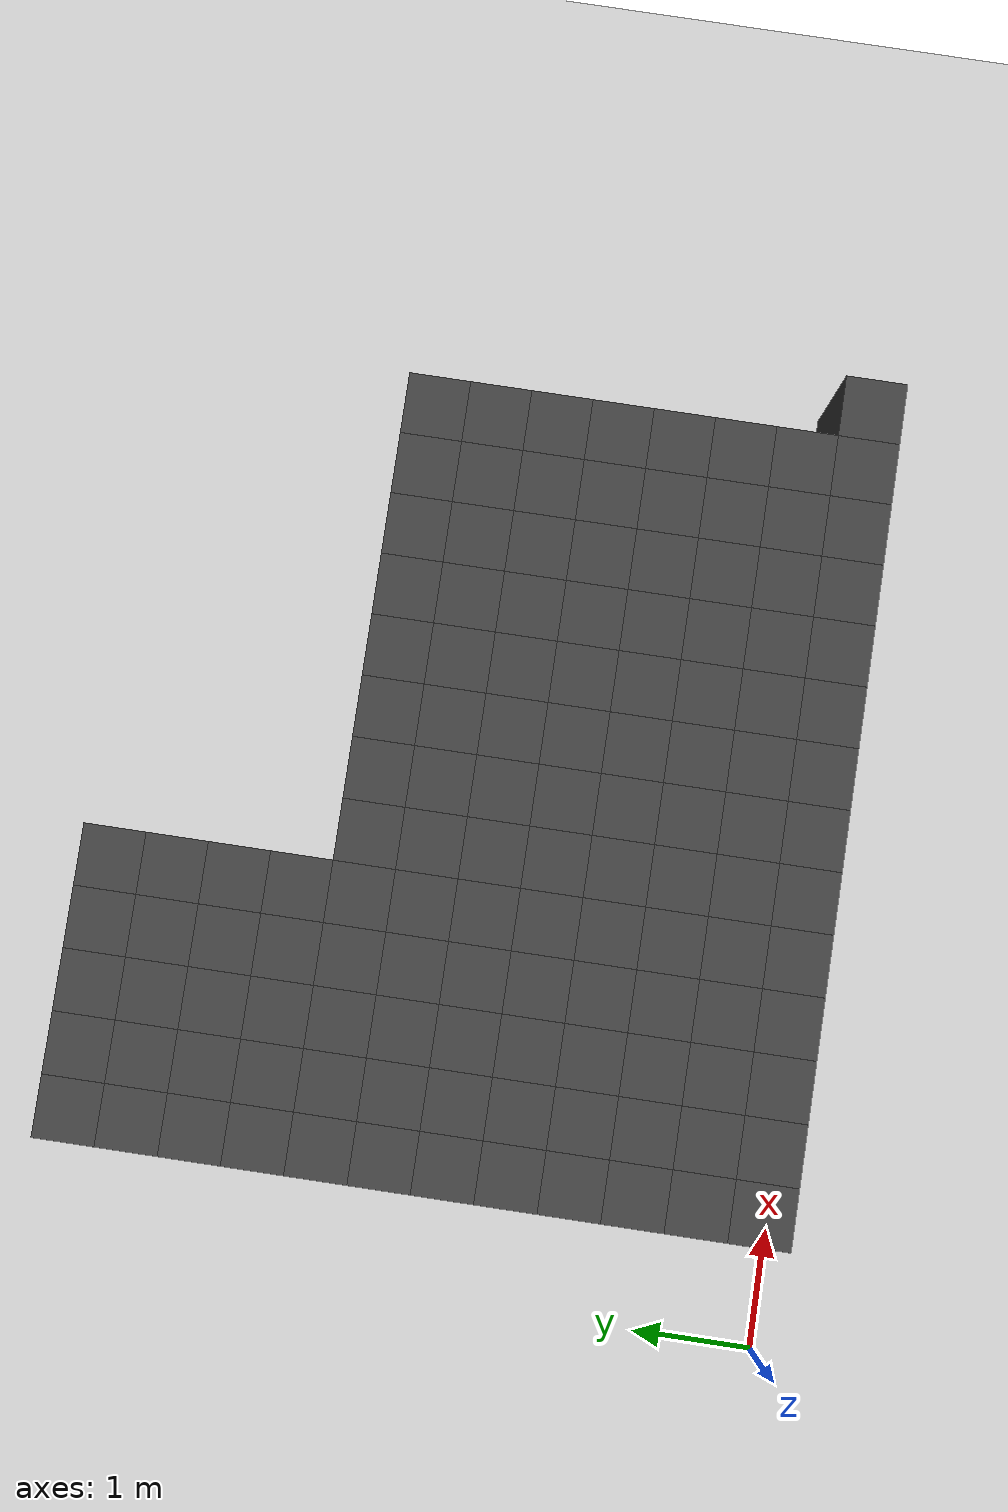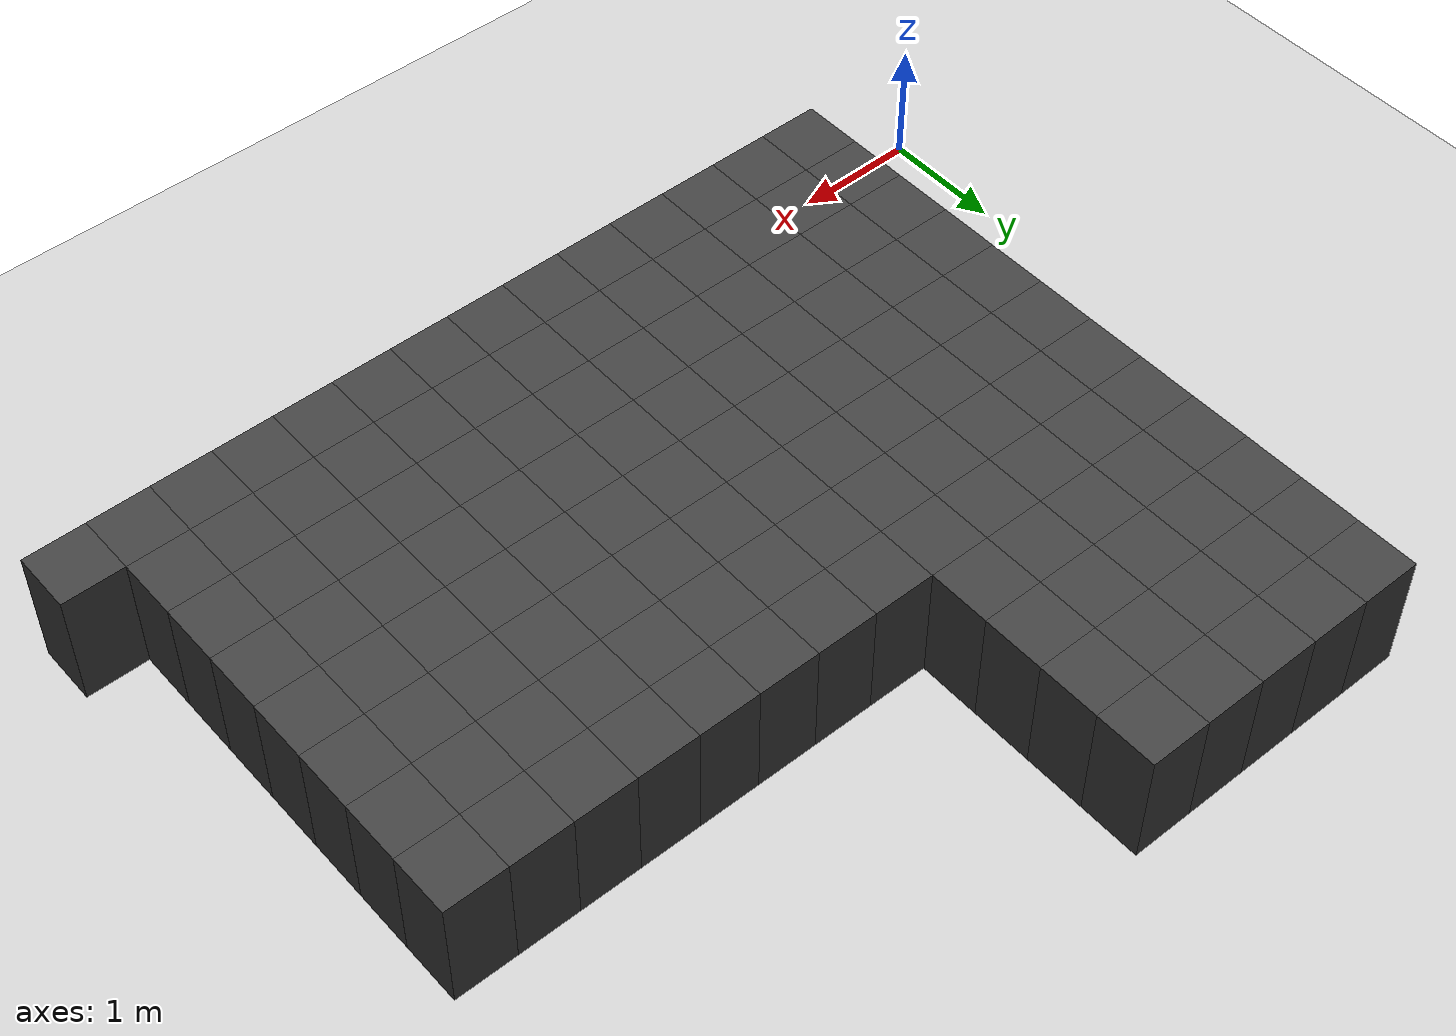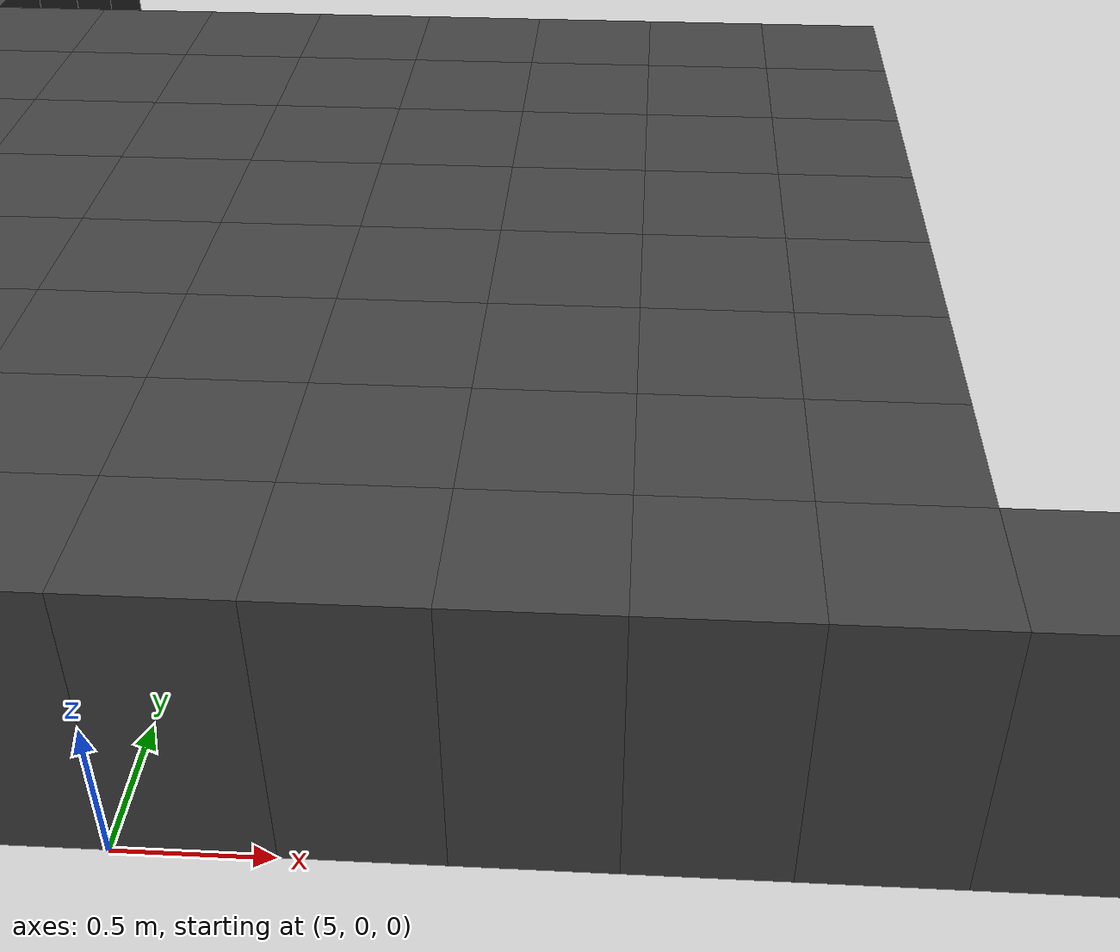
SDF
<sdf version="1.7">
 <world name="map_14668">
  <model name="ground_plane">
   <static>true</static>
   <link name="link">
    <collision name="collision">
     <geometry><plane><normal>0 0 1</normal><size>200 200</size></plane></geometry>
    </collision>
    <visual name="visual">
     <geometry><plane><normal>0 0 1</normal><size>200 200</size></plane></geometry>
     <material><ambient>0.8 0.8 0.8 1</ambient><diffuse>0.8 0.8 0.8 1</diffuse></material>
    </visual>
   </link>
  </model>
  <model name="maze_environment">
   <static>true</static>
   <link name="wall_489">
    <pose>1.250 5.750 0.500 0 0 0</pose>
    <collision name="col"><geometry><box><size>0.5 0.5 1.0</size></box></geometry></collision>
    <visual name="vis">
     <geometry><box><size>0.5 0.5 1.0</size></box></geometry>
     <material><ambient>0.15 0.15 0.15 1</ambient><diffuse>0.25 0.25 0.25 1</diffuse></material>
    </visual>
   </link>
   <link name="wall_490">
    <pose>1.750 5.750 0.500 0 0 0</pose>
    <collision name="col"><geometry><box><size>0.5 0.5 1.0</size></box></geometry></collision>
    <visual name="vis">
     <geometry><box><size>0.5 0.5 1.0</size></box></geometry>
     <material><ambient>0.15 0.15 0.15 1</ambient><diffuse>0.25 0.25 0.25 1</diffuse></material>
    </visual>
   </link>
   <link name="wall_491">
    <pose>2.250 5.750 0.500 0 0 0</pose>
    <collision name="col"><geometry><box><size>0.5 0.5 1.0</size></box></geometry></collision>
    <visual name="vis">
     <geometry><box><size>0.5 0.5 1.0</size></box></geometry>
     <material><ambient>0.15 0.15 0.15 1</ambient><diffuse>0.25 0.25 0.25 1</diffuse></material>
    </visual>
   </link>
   <link name="wall_492">
    <pose>2.750 5.750 0.500 0 0 0</pose>
    <collision name="col"><geometry><box><size>0.5 0.5 1.0</size></box></geometry></collision>
    <visual name="vis">
     <geometry><box><size>0.5 0.5 1.0</size></box></geometry>
     <material><ambient>0.15 0.15 0.15 1</ambient><diffuse>0.25 0.25 0.25 1</diffuse></material>
    </visual>
   </link>
   <link name="wall_493">
    <pose>3.250 5.750 0.500 0 0 0</pose>
    <collision name="col"><geometry><box><size>0.5 0.5 1.0</size></box></geometry></collision>
    <visual name="vis">
     <geometry><box><size>0.5 0.5 1.0</size></box></geometry>
     <material><ambient>0.15 0.15 0.15 1</ambient><diffuse>0.25 0.25 0.25 1</diffuse></material>
    </visual>
   </link>
   <link name="wall_519">
    <pose>1.250 5.250 0.500 0 0 0</pose>
    <collision name="col"><geometry><box><size>0.5 0.5 1.0</size></box></geometry></collision>
    <visual name="vis">
     <geometry><box><size>0.5 0.5 1.0</size></box></geometry>
     <material><ambient>0.15 0.15 0.15 1</ambient><diffuse>0.25 0.25 0.25 1</diffuse></material>
    </visual>
   </link>
   <link name="wall_520">
    <pose>1.750 5.250 0.500 0 0 0</pose>
    <collision name="col"><geometry><box><size>0.5 0.5 1.0</size></box></geometry></collision>
    <visual name="vis">
     <geometry><box><size>0.5 0.5 1.0</size></box></geometry>
     <material><ambient>0.15 0.15 0.15 1</ambient><diffuse>0.25 0.25 0.25 1</diffuse></material>
    </visual>
   </link>
   <link name="wall_521">
    <pose>2.250 5.250 0.500 0 0 0</pose>
    <collision name="col"><geometry><box><size>0.5 0.5 1.0</size></box></geometry></collision>
    <visual name="vis">
     <geometry><box><size>0.5 0.5 1.0</size></box></geometry>
     <material><ambient>0.15 0.15 0.15 1</ambient><diffuse>0.25 0.25 0.25 1</diffuse></material>
    </visual>
   </link>
   <link name="wall_522">
    <pose>2.750 5.250 0.500 0 0 0</pose>
    <collision name="col"><geometry><box><size>0.5 0.5 1.0</size></box></geometry></collision>
    <visual name="vis">
     <geometry><box><size>0.5 0.5 1.0</size></box></geometry>
     <material><ambient>0.15 0.15 0.15 1</ambient><diffuse>0.25 0.25 0.25 1</diffuse></material>
    </visual>
   </link>
   <link name="wall_523">
    <pose>3.250 5.250 0.500 0 0 0</pose>
    <collision name="col"><geometry><box><size>0.5 0.5 1.0</size></box></geometry></collision>
    <visual name="vis">
     <geometry><box><size>0.5 0.5 1.0</size></box></geometry>
     <material><ambient>0.15 0.15 0.15 1</ambient><diffuse>0.25 0.25 0.25 1</diffuse></material>
    </visual>
   </link>
   <link name="wall_555">
    <pose>1.250 4.750 0.500 0 0 0</pose>
    <collision name="col"><geometry><box><size>0.5 0.5 1.0</size></box></geometry></collision>
    <visual name="vis">
     <geometry><box><size>0.5 0.5 1.0</size></box></geometry>
     <material><ambient>0.15 0.15 0.15 1</ambient><diffuse>0.25 0.25 0.25 1</diffuse></material>
    </visual>
   </link>
   <link name="wall_556">
    <pose>1.750 4.750 0.500 0 0 0</pose>
    <collision name="col"><geometry><box><size>0.5 0.5 1.0</size></box></geometry></collision>
    <visual name="vis">
     <geometry><box><size>0.5 0.5 1.0</size></box></geometry>
     <material><ambient>0.15 0.15 0.15 1</ambient><diffuse>0.25 0.25 0.25 1</diffuse></material>
    </visual>
   </link>
   <link name="wall_557">
    <pose>2.250 4.750 0.500 0 0 0</pose>
    <collision name="col"><geometry><box><size>0.5 0.5 1.0</size></box></geometry></collision>
    <visual name="vis">
     <geometry><box><size>0.5 0.5 1.0</size></box></geometry>
     <material><ambient>0.15 0.15 0.15 1</ambient><diffuse>0.25 0.25 0.25 1</diffuse></material>
    </visual>
   </link>
   <link name="wall_558">
    <pose>2.750 4.750 0.500 0 0 0</pose>
    <collision name="col"><geometry><box><size>0.5 0.5 1.0</size></box></geometry></collision>
    <visual name="vis">
     <geometry><box><size>0.5 0.5 1.0</size></box></geometry>
     <material><ambient>0.15 0.15 0.15 1</ambient><diffuse>0.25 0.25 0.25 1</diffuse></material>
    </visual>
   </link>
   <link name="wall_559">
    <pose>3.250 4.750 0.500 0 0 0</pose>
    <collision name="col"><geometry><box><size>0.5 0.5 1.0</size></box></geometry></collision>
    <visual name="vis">
     <geometry><box><size>0.5 0.5 1.0</size></box></geometry>
     <material><ambient>0.15 0.15 0.15 1</ambient><diffuse>0.25 0.25 0.25 1</diffuse></material>
    </visual>
   </link>
   <link name="wall_589">
    <pose>1.250 4.250 0.500 0 0 0</pose>
    <collision name="col"><geometry><box><size>0.5 0.5 1.0</size></box></geometry></collision>
    <visual name="vis">
     <geometry><box><size>0.5 0.5 1.0</size></box></geometry>
     <material><ambient>0.15 0.15 0.15 1</ambient><diffuse>0.25 0.25 0.25 1</diffuse></material>
    </visual>
   </link>
   <link name="wall_590">
    <pose>1.750 4.250 0.500 0 0 0</pose>
    <collision name="col"><geometry><box><size>0.5 0.5 1.0</size></box></geometry></collision>
    <visual name="vis">
     <geometry><box><size>0.5 0.5 1.0</size></box></geometry>
     <material><ambient>0.15 0.15 0.15 1</ambient><diffuse>0.25 0.25 0.25 1</diffuse></material>
    </visual>
   </link>
   <link name="wall_591">
    <pose>2.250 4.250 0.500 0 0 0</pose>
    <collision name="col"><geometry><box><size>0.5 0.5 1.0</size></box></geometry></collision>
    <visual name="vis">
     <geometry><box><size>0.5 0.5 1.0</size></box></geometry>
     <material><ambient>0.15 0.15 0.15 1</ambient><diffuse>0.25 0.25 0.25 1</diffuse></material>
    </visual>
   </link>
   <link name="wall_592">
    <pose>2.750 4.250 0.500 0 0 0</pose>
    <collision name="col"><geometry><box><size>0.5 0.5 1.0</size></box></geometry></collision>
    <visual name="vis">
     <geometry><box><size>0.5 0.5 1.0</size></box></geometry>
     <material><ambient>0.15 0.15 0.15 1</ambient><diffuse>0.25 0.25 0.25 1</diffuse></material>
    </visual>
   </link>
   <link name="wall_593">
    <pose>3.250 4.250 0.500 0 0 0</pose>
    <collision name="col"><geometry><box><size>0.5 0.5 1.0</size></box></geometry></collision>
    <visual name="vis">
     <geometry><box><size>0.5 0.5 1.0</size></box></geometry>
     <material><ambient>0.15 0.15 0.15 1</ambient><diffuse>0.25 0.25 0.25 1</diffuse></material>
    </visual>
   </link>
   <link name="wall_623">
    <pose>1.250 3.750 0.500 0 0 0</pose>
    <collision name="col"><geometry><box><size>0.5 0.5 1.0</size></box></geometry></collision>
    <visual name="vis">
     <geometry><box><size>0.5 0.5 1.0</size></box></geometry>
     <material><ambient>0.15 0.15 0.15 1</ambient><diffuse>0.25 0.25 0.25 1</diffuse></material>
    </visual>
   </link>
   <link name="wall_624">
    <pose>1.750 3.750 0.500 0 0 0</pose>
    <collision name="col"><geometry><box><size>0.5 0.5 1.0</size></box></geometry></collision>
    <visual name="vis">
     <geometry><box><size>0.5 0.5 1.0</size></box></geometry>
     <material><ambient>0.15 0.15 0.15 1</ambient><diffuse>0.25 0.25 0.25 1</diffuse></material>
    </visual>
   </link>
   <link name="wall_625">
    <pose>2.250 3.750 0.500 0 0 0</pose>
    <collision name="col"><geometry><box><size>0.5 0.5 1.0</size></box></geometry></collision>
    <visual name="vis">
     <geometry><box><size>0.5 0.5 1.0</size></box></geometry>
     <material><ambient>0.15 0.15 0.15 1</ambient><diffuse>0.25 0.25 0.25 1</diffuse></material>
    </visual>
   </link>
   <link name="wall_626">
    <pose>2.750 3.750 0.500 0 0 0</pose>
    <collision name="col"><geometry><box><size>0.5 0.5 1.0</size></box></geometry></collision>
    <visual name="vis">
     <geometry><box><size>0.5 0.5 1.0</size></box></geometry>
     <material><ambient>0.15 0.15 0.15 1</ambient><diffuse>0.25 0.25 0.25 1</diffuse></material>
    </visual>
   </link>
   <link name="wall_627">
    <pose>3.250 3.750 0.500 0 0 0</pose>
    <collision name="col"><geometry><box><size>0.5 0.5 1.0</size></box></geometry></collision>
    <visual name="vis">
     <geometry><box><size>0.5 0.5 1.0</size></box></geometry>
     <material><ambient>0.15 0.15 0.15 1</ambient><diffuse>0.25 0.25 0.25 1</diffuse></material>
    </visual>
   </link>
   <link name="wall_628">
    <pose>3.750 3.750 0.500 0 0 0</pose>
    <collision name="col"><geometry><box><size>0.5 0.5 1.0</size></box></geometry></collision>
    <visual name="vis">
     <geometry><box><size>0.5 0.5 1.0</size></box></geometry>
     <material><ambient>0.15 0.15 0.15 1</ambient><diffuse>0.25 0.25 0.25 1</diffuse></material>
    </visual>
   </link>
   <link name="wall_629">
    <pose>4.250 3.750 0.500 0 0 0</pose>
    <collision name="col"><geometry><box><size>0.5 0.5 1.0</size></box></geometry></collision>
    <visual name="vis">
     <geometry><box><size>0.5 0.5 1.0</size></box></geometry>
     <material><ambient>0.15 0.15 0.15 1</ambient><diffuse>0.25 0.25 0.25 1</diffuse></material>
    </visual>
   </link>
   <link name="wall_630">
    <pose>4.750 3.750 0.500 0 0 0</pose>
    <collision name="col"><geometry><box><size>0.5 0.5 1.0</size></box></geometry></collision>
    <visual name="vis">
     <geometry><box><size>0.5 0.5 1.0</size></box></geometry>
     <material><ambient>0.15 0.15 0.15 1</ambient><diffuse>0.25 0.25 0.25 1</diffuse></material>
    </visual>
   </link>
   <link name="wall_631">
    <pose>5.250 3.750 0.500 0 0 0</pose>
    <collision name="col"><geometry><box><size>0.5 0.5 1.0</size></box></geometry></collision>
    <visual name="vis">
     <geometry><box><size>0.5 0.5 1.0</size></box></geometry>
     <material><ambient>0.15 0.15 0.15 1</ambient><diffuse>0.25 0.25 0.25 1</diffuse></material>
    </visual>
   </link>
   <link name="wall_632">
    <pose>5.750 3.750 0.500 0 0 0</pose>
    <collision name="col"><geometry><box><size>0.5 0.5 1.0</size></box></geometry></collision>
    <visual name="vis">
     <geometry><box><size>0.5 0.5 1.0</size></box></geometry>
     <material><ambient>0.15 0.15 0.15 1</ambient><diffuse>0.25 0.25 0.25 1</diffuse></material>
    </visual>
   </link>
   <link name="wall_633">
    <pose>6.250 3.750 0.500 0 0 0</pose>
    <collision name="col"><geometry><box><size>0.5 0.5 1.0</size></box></geometry></collision>
    <visual name="vis">
     <geometry><box><size>0.5 0.5 1.0</size></box></geometry>
     <material><ambient>0.15 0.15 0.15 1</ambient><diffuse>0.25 0.25 0.25 1</diffuse></material>
    </visual>
   </link>
   <link name="wall_634">
    <pose>6.750 3.750 0.500 0 0 0</pose>
    <collision name="col"><geometry><box><size>0.5 0.5 1.0</size></box></geometry></collision>
    <visual name="vis">
     <geometry><box><size>0.5 0.5 1.0</size></box></geometry>
     <material><ambient>0.15 0.15 0.15 1</ambient><diffuse>0.25 0.25 0.25 1</diffuse></material>
    </visual>
   </link>
   <link name="wall_635">
    <pose>7.250 3.750 0.500 0 0 0</pose>
    <collision name="col"><geometry><box><size>0.5 0.5 1.0</size></box></geometry></collision>
    <visual name="vis">
     <geometry><box><size>0.5 0.5 1.0</size></box></geometry>
     <material><ambient>0.15 0.15 0.15 1</ambient><diffuse>0.25 0.25 0.25 1</diffuse></material>
    </visual>
   </link>
   <link name="wall_665">
    <pose>1.250 3.250 0.500 0 0 0</pose>
    <collision name="col"><geometry><box><size>0.5 0.5 1.0</size></box></geometry></collision>
    <visual name="vis">
     <geometry><box><size>0.5 0.5 1.0</size></box></geometry>
     <material><ambient>0.15 0.15 0.15 1</ambient><diffuse>0.25 0.25 0.25 1</diffuse></material>
    </visual>
   </link>
   <link name="wall_666">
    <pose>1.750 3.250 0.500 0 0 0</pose>
    <collision name="col"><geometry><box><size>0.5 0.5 1.0</size></box></geometry></collision>
    <visual name="vis">
     <geometry><box><size>0.5 0.5 1.0</size></box></geometry>
     <material><ambient>0.15 0.15 0.15 1</ambient><diffuse>0.25 0.25 0.25 1</diffuse></material>
    </visual>
   </link>
   <link name="wall_667">
    <pose>2.250 3.250 0.500 0 0 0</pose>
    <collision name="col"><geometry><box><size>0.5 0.5 1.0</size></box></geometry></collision>
    <visual name="vis">
     <geometry><box><size>0.5 0.5 1.0</size></box></geometry>
     <material><ambient>0.15 0.15 0.15 1</ambient><diffuse>0.25 0.25 0.25 1</diffuse></material>
    </visual>
   </link>
   <link name="wall_668">
    <pose>2.750 3.250 0.500 0 0 0</pose>
    <collision name="col"><geometry><box><size>0.5 0.5 1.0</size></box></geometry></collision>
    <visual name="vis">
     <geometry><box><size>0.5 0.5 1.0</size></box></geometry>
     <material><ambient>0.15 0.15 0.15 1</ambient><diffuse>0.25 0.25 0.25 1</diffuse></material>
    </visual>
   </link>
   <link name="wall_669">
    <pose>3.250 3.250 0.500 0 0 0</pose>
    <collision name="col"><geometry><box><size>0.5 0.5 1.0</size></box></geometry></collision>
    <visual name="vis">
     <geometry><box><size>0.5 0.5 1.0</size></box></geometry>
     <material><ambient>0.15 0.15 0.15 1</ambient><diffuse>0.25 0.25 0.25 1</diffuse></material>
    </visual>
   </link>
   <link name="wall_670">
    <pose>3.750 3.250 0.500 0 0 0</pose>
    <collision name="col"><geometry><box><size>0.5 0.5 1.0</size></box></geometry></collision>
    <visual name="vis">
     <geometry><box><size>0.5 0.5 1.0</size></box></geometry>
     <material><ambient>0.15 0.15 0.15 1</ambient><diffuse>0.25 0.25 0.25 1</diffuse></material>
    </visual>
   </link>
   <link name="wall_671">
    <pose>4.250 3.250 0.500 0 0 0</pose>
    <collision name="col"><geometry><box><size>0.5 0.5 1.0</size></box></geometry></collision>
    <visual name="vis">
     <geometry><box><size>0.5 0.5 1.0</size></box></geometry>
     <material><ambient>0.15 0.15 0.15 1</ambient><diffuse>0.25 0.25 0.25 1</diffuse></material>
    </visual>
   </link>
   <link name="wall_672">
    <pose>4.750 3.250 0.500 0 0 0</pose>
    <collision name="col"><geometry><box><size>0.5 0.5 1.0</size></box></geometry></collision>
    <visual name="vis">
     <geometry><box><size>0.5 0.5 1.0</size></box></geometry>
     <material><ambient>0.15 0.15 0.15 1</ambient><diffuse>0.25 0.25 0.25 1</diffuse></material>
    </visual>
   </link>
   <link name="wall_673">
    <pose>5.250 3.250 0.500 0 0 0</pose>
    <collision name="col"><geometry><box><size>0.5 0.5 1.0</size></box></geometry></collision>
    <visual name="vis">
     <geometry><box><size>0.5 0.5 1.0</size></box></geometry>
     <material><ambient>0.15 0.15 0.15 1</ambient><diffuse>0.25 0.25 0.25 1</diffuse></material>
    </visual>
   </link>
   <link name="wall_674">
    <pose>5.750 3.250 0.500 0 0 0</pose>
    <collision name="col"><geometry><box><size>0.5 0.5 1.0</size></box></geometry></collision>
    <visual name="vis">
     <geometry><box><size>0.5 0.5 1.0</size></box></geometry>
     <material><ambient>0.15 0.15 0.15 1</ambient><diffuse>0.25 0.25 0.25 1</diffuse></material>
    </visual>
   </link>
   <link name="wall_675">
    <pose>6.250 3.250 0.500 0 0 0</pose>
    <collision name="col"><geometry><box><size>0.5 0.5 1.0</size></box></geometry></collision>
    <visual name="vis">
     <geometry><box><size>0.5 0.5 1.0</size></box></geometry>
     <material><ambient>0.15 0.15 0.15 1</ambient><diffuse>0.25 0.25 0.25 1</diffuse></material>
    </visual>
   </link>
   <link name="wall_676">
    <pose>6.750 3.250 0.500 0 0 0</pose>
    <collision name="col"><geometry><box><size>0.5 0.5 1.0</size></box></geometry></collision>
    <visual name="vis">
     <geometry><box><size>0.5 0.5 1.0</size></box></geometry>
     <material><ambient>0.15 0.15 0.15 1</ambient><diffuse>0.25 0.25 0.25 1</diffuse></material>
    </visual>
   </link>
   <link name="wall_677">
    <pose>7.250 3.250 0.500 0 0 0</pose>
    <collision name="col"><geometry><box><size>0.5 0.5 1.0</size></box></geometry></collision>
    <visual name="vis">
     <geometry><box><size>0.5 0.5 1.0</size></box></geometry>
     <material><ambient>0.15 0.15 0.15 1</ambient><diffuse>0.25 0.25 0.25 1</diffuse></material>
    </visual>
   </link>
   <link name="wall_701">
    <pose>1.250 2.750 0.500 0 0 0</pose>
    <collision name="col"><geometry><box><size>0.5 0.5 1.0</size></box></geometry></collision>
    <visual name="vis">
     <geometry><box><size>0.5 0.5 1.0</size></box></geometry>
     <material><ambient>0.15 0.15 0.15 1</ambient><diffuse>0.25 0.25 0.25 1</diffuse></material>
    </visual>
   </link>
   <link name="wall_702">
    <pose>1.750 2.750 0.500 0 0 0</pose>
    <collision name="col"><geometry><box><size>0.5 0.5 1.0</size></box></geometry></collision>
    <visual name="vis">
     <geometry><box><size>0.5 0.5 1.0</size></box></geometry>
     <material><ambient>0.15 0.15 0.15 1</ambient><diffuse>0.25 0.25 0.25 1</diffuse></material>
    </visual>
   </link>
   <link name="wall_703">
    <pose>2.250 2.750 0.500 0 0 0</pose>
    <collision name="col"><geometry><box><size>0.5 0.5 1.0</size></box></geometry></collision>
    <visual name="vis">
     <geometry><box><size>0.5 0.5 1.0</size></box></geometry>
     <material><ambient>0.15 0.15 0.15 1</ambient><diffuse>0.25 0.25 0.25 1</diffuse></material>
    </visual>
   </link>
   <link name="wall_704">
    <pose>2.750 2.750 0.500 0 0 0</pose>
    <collision name="col"><geometry><box><size>0.5 0.5 1.0</size></box></geometry></collision>
    <visual name="vis">
     <geometry><box><size>0.5 0.5 1.0</size></box></geometry>
     <material><ambient>0.15 0.15 0.15 1</ambient><diffuse>0.25 0.25 0.25 1</diffuse></material>
    </visual>
   </link>
   <link name="wall_705">
    <pose>3.250 2.750 0.500 0 0 0</pose>
    <collision name="col"><geometry><box><size>0.5 0.5 1.0</size></box></geometry></collision>
    <visual name="vis">
     <geometry><box><size>0.5 0.5 1.0</size></box></geometry>
     <material><ambient>0.15 0.15 0.15 1</ambient><diffuse>0.25 0.25 0.25 1</diffuse></material>
    </visual>
   </link>
   <link name="wall_706">
    <pose>3.750 2.750 0.500 0 0 0</pose>
    <collision name="col"><geometry><box><size>0.5 0.5 1.0</size></box></geometry></collision>
    <visual name="vis">
     <geometry><box><size>0.5 0.5 1.0</size></box></geometry>
     <material><ambient>0.15 0.15 0.15 1</ambient><diffuse>0.25 0.25 0.25 1</diffuse></material>
    </visual>
   </link>
   <link name="wall_707">
    <pose>4.250 2.750 0.500 0 0 0</pose>
    <collision name="col"><geometry><box><size>0.5 0.5 1.0</size></box></geometry></collision>
    <visual name="vis">
     <geometry><box><size>0.5 0.5 1.0</size></box></geometry>
     <material><ambient>0.15 0.15 0.15 1</ambient><diffuse>0.25 0.25 0.25 1</diffuse></material>
    </visual>
   </link>
   <link name="wall_708">
    <pose>4.750 2.750 0.500 0 0 0</pose>
    <collision name="col"><geometry><box><size>0.5 0.5 1.0</size></box></geometry></collision>
    <visual name="vis">
     <geometry><box><size>0.5 0.5 1.0</size></box></geometry>
     <material><ambient>0.15 0.15 0.15 1</ambient><diffuse>0.25 0.25 0.25 1</diffuse></material>
    </visual>
   </link>
   <link name="wall_709">
    <pose>5.250 2.750 0.500 0 0 0</pose>
    <collision name="col"><geometry><box><size>0.5 0.5 1.0</size></box></geometry></collision>
    <visual name="vis">
     <geometry><box><size>0.5 0.5 1.0</size></box></geometry>
     <material><ambient>0.15 0.15 0.15 1</ambient><diffuse>0.25 0.25 0.25 1</diffuse></material>
    </visual>
   </link>
   <link name="wall_710">
    <pose>5.750 2.750 0.500 0 0 0</pose>
    <collision name="col"><geometry><box><size>0.5 0.5 1.0</size></box></geometry></collision>
    <visual name="vis">
     <geometry><box><size>0.5 0.5 1.0</size></box></geometry>
     <material><ambient>0.15 0.15 0.15 1</ambient><diffuse>0.25 0.25 0.25 1</diffuse></material>
    </visual>
   </link>
   <link name="wall_711">
    <pose>6.250 2.750 0.500 0 0 0</pose>
    <collision name="col"><geometry><box><size>0.5 0.5 1.0</size></box></geometry></collision>
    <visual name="vis">
     <geometry><box><size>0.5 0.5 1.0</size></box></geometry>
     <material><ambient>0.15 0.15 0.15 1</ambient><diffuse>0.25 0.25 0.25 1</diffuse></material>
    </visual>
   </link>
   <link name="wall_712">
    <pose>6.750 2.750 0.500 0 0 0</pose>
    <collision name="col"><geometry><box><size>0.5 0.5 1.0</size></box></geometry></collision>
    <visual name="vis">
     <geometry><box><size>0.5 0.5 1.0</size></box></geometry>
     <material><ambient>0.15 0.15 0.15 1</ambient><diffuse>0.25 0.25 0.25 1</diffuse></material>
    </visual>
   </link>
   <link name="wall_713">
    <pose>7.250 2.750 0.500 0 0 0</pose>
    <collision name="col"><geometry><box><size>0.5 0.5 1.0</size></box></geometry></collision>
    <visual name="vis">
     <geometry><box><size>0.5 0.5 1.0</size></box></geometry>
     <material><ambient>0.15 0.15 0.15 1</ambient><diffuse>0.25 0.25 0.25 1</diffuse></material>
    </visual>
   </link>
   <link name="wall_744">
    <pose>1.250 2.250 0.500 0 0 0</pose>
    <collision name="col"><geometry><box><size>0.5 0.5 1.0</size></box></geometry></collision>
    <visual name="vis">
     <geometry><box><size>0.5 0.5 1.0</size></box></geometry>
     <material><ambient>0.15 0.15 0.15 1</ambient><diffuse>0.25 0.25 0.25 1</diffuse></material>
    </visual>
   </link>
   <link name="wall_745">
    <pose>1.750 2.250 0.500 0 0 0</pose>
    <collision name="col"><geometry><box><size>0.5 0.5 1.0</size></box></geometry></collision>
    <visual name="vis">
     <geometry><box><size>0.5 0.5 1.0</size></box></geometry>
     <material><ambient>0.15 0.15 0.15 1</ambient><diffuse>0.25 0.25 0.25 1</diffuse></material>
    </visual>
   </link>
   <link name="wall_746">
    <pose>2.250 2.250 0.500 0 0 0</pose>
    <collision name="col"><geometry><box><size>0.5 0.5 1.0</size></box></geometry></collision>
    <visual name="vis">
     <geometry><box><size>0.5 0.5 1.0</size></box></geometry>
     <material><ambient>0.15 0.15 0.15 1</ambient><diffuse>0.25 0.25 0.25 1</diffuse></material>
    </visual>
   </link>
   <link name="wall_747">
    <pose>2.750 2.250 0.500 0 0 0</pose>
    <collision name="col"><geometry><box><size>0.5 0.5 1.0</size></box></geometry></collision>
    <visual name="vis">
     <geometry><box><size>0.5 0.5 1.0</size></box></geometry>
     <material><ambient>0.15 0.15 0.15 1</ambient><diffuse>0.25 0.25 0.25 1</diffuse></material>
    </visual>
   </link>
   <link name="wall_748">
    <pose>3.250 2.250 0.500 0 0 0</pose>
    <collision name="col"><geometry><box><size>0.5 0.5 1.0</size></box></geometry></collision>
    <visual name="vis">
     <geometry><box><size>0.5 0.5 1.0</size></box></geometry>
     <material><ambient>0.15 0.15 0.15 1</ambient><diffuse>0.25 0.25 0.25 1</diffuse></material>
    </visual>
   </link>
   <link name="wall_749">
    <pose>3.750 2.250 0.500 0 0 0</pose>
    <collision name="col"><geometry><box><size>0.5 0.5 1.0</size></box></geometry></collision>
    <visual name="vis">
     <geometry><box><size>0.5 0.5 1.0</size></box></geometry>
     <material><ambient>0.15 0.15 0.15 1</ambient><diffuse>0.25 0.25 0.25 1</diffuse></material>
    </visual>
   </link>
   <link name="wall_750">
    <pose>4.250 2.250 0.500 0 0 0</pose>
    <collision name="col"><geometry><box><size>0.5 0.5 1.0</size></box></geometry></collision>
    <visual name="vis">
     <geometry><box><size>0.5 0.5 1.0</size></box></geometry>
     <material><ambient>0.15 0.15 0.15 1</ambient><diffuse>0.25 0.25 0.25 1</diffuse></material>
    </visual>
   </link>
   <link name="wall_751">
    <pose>4.750 2.250 0.500 0 0 0</pose>
    <collision name="col"><geometry><box><size>0.5 0.5 1.0</size></box></geometry></collision>
    <visual name="vis">
     <geometry><box><size>0.5 0.5 1.0</size></box></geometry>
     <material><ambient>0.15 0.15 0.15 1</ambient><diffuse>0.25 0.25 0.25 1</diffuse></material>
    </visual>
   </link>
   <link name="wall_752">
    <pose>5.250 2.250 0.500 0 0 0</pose>
    <collision name="col"><geometry><box><size>0.5 0.5 1.0</size></box></geometry></collision>
    <visual name="vis">
     <geometry><box><size>0.5 0.5 1.0</size></box></geometry>
     <material><ambient>0.15 0.15 0.15 1</ambient><diffuse>0.25 0.25 0.25 1</diffuse></material>
    </visual>
   </link>
   <link name="wall_753">
    <pose>5.750 2.250 0.500 0 0 0</pose>
    <collision name="col"><geometry><box><size>0.5 0.5 1.0</size></box></geometry></collision>
    <visual name="vis">
     <geometry><box><size>0.5 0.5 1.0</size></box></geometry>
     <material><ambient>0.15 0.15 0.15 1</ambient><diffuse>0.25 0.25 0.25 1</diffuse></material>
    </visual>
   </link>
   <link name="wall_754">
    <pose>6.250 2.250 0.500 0 0 0</pose>
    <collision name="col"><geometry><box><size>0.5 0.5 1.0</size></box></geometry></collision>
    <visual name="vis">
     <geometry><box><size>0.5 0.5 1.0</size></box></geometry>
     <material><ambient>0.15 0.15 0.15 1</ambient><diffuse>0.25 0.25 0.25 1</diffuse></material>
    </visual>
   </link>
   <link name="wall_755">
    <pose>6.750 2.250 0.500 0 0 0</pose>
    <collision name="col"><geometry><box><size>0.5 0.5 1.0</size></box></geometry></collision>
    <visual name="vis">
     <geometry><box><size>0.5 0.5 1.0</size></box></geometry>
     <material><ambient>0.15 0.15 0.15 1</ambient><diffuse>0.25 0.25 0.25 1</diffuse></material>
    </visual>
   </link>
   <link name="wall_756">
    <pose>7.250 2.250 0.500 0 0 0</pose>
    <collision name="col"><geometry><box><size>0.5 0.5 1.0</size></box></geometry></collision>
    <visual name="vis">
     <geometry><box><size>0.5 0.5 1.0</size></box></geometry>
     <material><ambient>0.15 0.15 0.15 1</ambient><diffuse>0.25 0.25 0.25 1</diffuse></material>
    </visual>
   </link>
   <link name="wall_787">
    <pose>1.250 1.750 0.500 0 0 0</pose>
    <collision name="col"><geometry><box><size>0.5 0.5 1.0</size></box></geometry></collision>
    <visual name="vis">
     <geometry><box><size>0.5 0.5 1.0</size></box></geometry>
     <material><ambient>0.15 0.15 0.15 1</ambient><diffuse>0.25 0.25 0.25 1</diffuse></material>
    </visual>
   </link>
   <link name="wall_788">
    <pose>1.750 1.750 0.500 0 0 0</pose>
    <collision name="col"><geometry><box><size>0.5 0.5 1.0</size></box></geometry></collision>
    <visual name="vis">
     <geometry><box><size>0.5 0.5 1.0</size></box></geometry>
     <material><ambient>0.15 0.15 0.15 1</ambient><diffuse>0.25 0.25 0.25 1</diffuse></material>
    </visual>
   </link>
   <link name="wall_789">
    <pose>2.250 1.750 0.500 0 0 0</pose>
    <collision name="col"><geometry><box><size>0.5 0.5 1.0</size></box></geometry></collision>
    <visual name="vis">
     <geometry><box><size>0.5 0.5 1.0</size></box></geometry>
     <material><ambient>0.15 0.15 0.15 1</ambient><diffuse>0.25 0.25 0.25 1</diffuse></material>
    </visual>
   </link>
   <link name="wall_790">
    <pose>2.750 1.750 0.500 0 0 0</pose>
    <collision name="col"><geometry><box><size>0.5 0.5 1.0</size></box></geometry></collision>
    <visual name="vis">
     <geometry><box><size>0.5 0.5 1.0</size></box></geometry>
     <material><ambient>0.15 0.15 0.15 1</ambient><diffuse>0.25 0.25 0.25 1</diffuse></material>
    </visual>
   </link>
   <link name="wall_791">
    <pose>3.250 1.750 0.500 0 0 0</pose>
    <collision name="col"><geometry><box><size>0.5 0.5 1.0</size></box></geometry></collision>
    <visual name="vis">
     <geometry><box><size>0.5 0.5 1.0</size></box></geometry>
     <material><ambient>0.15 0.15 0.15 1</ambient><diffuse>0.25 0.25 0.25 1</diffuse></material>
    </visual>
   </link>
   <link name="wall_792">
    <pose>3.750 1.750 0.500 0 0 0</pose>
    <collision name="col"><geometry><box><size>0.5 0.5 1.0</size></box></geometry></collision>
    <visual name="vis">
     <geometry><box><size>0.5 0.5 1.0</size></box></geometry>
     <material><ambient>0.15 0.15 0.15 1</ambient><diffuse>0.25 0.25 0.25 1</diffuse></material>
    </visual>
   </link>
   <link name="wall_793">
    <pose>4.250 1.750 0.500 0 0 0</pose>
    <collision name="col"><geometry><box><size>0.5 0.5 1.0</size></box></geometry></collision>
    <visual name="vis">
     <geometry><box><size>0.5 0.5 1.0</size></box></geometry>
     <material><ambient>0.15 0.15 0.15 1</ambient><diffuse>0.25 0.25 0.25 1</diffuse></material>
    </visual>
   </link>
   <link name="wall_794">
    <pose>4.750 1.750 0.500 0 0 0</pose>
    <collision name="col"><geometry><box><size>0.5 0.5 1.0</size></box></geometry></collision>
    <visual name="vis">
     <geometry><box><size>0.5 0.5 1.0</size></box></geometry>
     <material><ambient>0.15 0.15 0.15 1</ambient><diffuse>0.25 0.25 0.25 1</diffuse></material>
    </visual>
   </link>
   <link name="wall_795">
    <pose>5.250 1.750 0.500 0 0 0</pose>
    <collision name="col"><geometry><box><size>0.5 0.5 1.0</size></box></geometry></collision>
    <visual name="vis">
     <geometry><box><size>0.5 0.5 1.0</size></box></geometry>
     <material><ambient>0.15 0.15 0.15 1</ambient><diffuse>0.25 0.25 0.25 1</diffuse></material>
    </visual>
   </link>
   <link name="wall_796">
    <pose>5.750 1.750 0.500 0 0 0</pose>
    <collision name="col"><geometry><box><size>0.5 0.5 1.0</size></box></geometry></collision>
    <visual name="vis">
     <geometry><box><size>0.5 0.5 1.0</size></box></geometry>
     <material><ambient>0.15 0.15 0.15 1</ambient><diffuse>0.25 0.25 0.25 1</diffuse></material>
    </visual>
   </link>
   <link name="wall_797">
    <pose>6.250 1.750 0.500 0 0 0</pose>
    <collision name="col"><geometry><box><size>0.5 0.5 1.0</size></box></geometry></collision>
    <visual name="vis">
     <geometry><box><size>0.5 0.5 1.0</size></box></geometry>
     <material><ambient>0.15 0.15 0.15 1</ambient><diffuse>0.25 0.25 0.25 1</diffuse></material>
    </visual>
   </link>
   <link name="wall_798">
    <pose>6.750 1.750 0.500 0 0 0</pose>
    <collision name="col"><geometry><box><size>0.5 0.5 1.0</size></box></geometry></collision>
    <visual name="vis">
     <geometry><box><size>0.5 0.5 1.0</size></box></geometry>
     <material><ambient>0.15 0.15 0.15 1</ambient><diffuse>0.25 0.25 0.25 1</diffuse></material>
    </visual>
   </link>
   <link name="wall_799">
    <pose>7.250 1.750 0.500 0 0 0</pose>
    <collision name="col"><geometry><box><size>0.5 0.5 1.0</size></box></geometry></collision>
    <visual name="vis">
     <geometry><box><size>0.5 0.5 1.0</size></box></geometry>
     <material><ambient>0.15 0.15 0.15 1</ambient><diffuse>0.25 0.25 0.25 1</diffuse></material>
    </visual>
   </link>
   <link name="wall_830">
    <pose>1.250 1.250 0.500 0 0 0</pose>
    <collision name="col"><geometry><box><size>0.5 0.5 1.0</size></box></geometry></collision>
    <visual name="vis">
     <geometry><box><size>0.5 0.5 1.0</size></box></geometry>
     <material><ambient>0.15 0.15 0.15 1</ambient><diffuse>0.25 0.25 0.25 1</diffuse></material>
    </visual>
   </link>
   <link name="wall_831">
    <pose>1.750 1.250 0.500 0 0 0</pose>
    <collision name="col"><geometry><box><size>0.5 0.5 1.0</size></box></geometry></collision>
    <visual name="vis">
     <geometry><box><size>0.5 0.5 1.0</size></box></geometry>
     <material><ambient>0.15 0.15 0.15 1</ambient><diffuse>0.25 0.25 0.25 1</diffuse></material>
    </visual>
   </link>
   <link name="wall_832">
    <pose>2.250 1.250 0.500 0 0 0</pose>
    <collision name="col"><geometry><box><size>0.5 0.5 1.0</size></box></geometry></collision>
    <visual name="vis">
     <geometry><box><size>0.5 0.5 1.0</size></box></geometry>
     <material><ambient>0.15 0.15 0.15 1</ambient><diffuse>0.25 0.25 0.25 1</diffuse></material>
    </visual>
   </link>
   <link name="wall_833">
    <pose>2.750 1.250 0.500 0 0 0</pose>
    <collision name="col"><geometry><box><size>0.5 0.5 1.0</size></box></geometry></collision>
    <visual name="vis">
     <geometry><box><size>0.5 0.5 1.0</size></box></geometry>
     <material><ambient>0.15 0.15 0.15 1</ambient><diffuse>0.25 0.25 0.25 1</diffuse></material>
    </visual>
   </link>
   <link name="wall_834">
    <pose>3.250 1.250 0.500 0 0 0</pose>
    <collision name="col"><geometry><box><size>0.5 0.5 1.0</size></box></geometry></collision>
    <visual name="vis">
     <geometry><box><size>0.5 0.5 1.0</size></box></geometry>
     <material><ambient>0.15 0.15 0.15 1</ambient><diffuse>0.25 0.25 0.25 1</diffuse></material>
    </visual>
   </link>
   <link name="wall_835">
    <pose>3.750 1.250 0.500 0 0 0</pose>
    <collision name="col"><geometry><box><size>0.5 0.5 1.0</size></box></geometry></collision>
    <visual name="vis">
     <geometry><box><size>0.5 0.5 1.0</size></box></geometry>
     <material><ambient>0.15 0.15 0.15 1</ambient><diffuse>0.25 0.25 0.25 1</diffuse></material>
    </visual>
   </link>
   <link name="wall_836">
    <pose>4.250 1.250 0.500 0 0 0</pose>
    <collision name="col"><geometry><box><size>0.5 0.5 1.0</size></box></geometry></collision>
    <visual name="vis">
     <geometry><box><size>0.5 0.5 1.0</size></box></geometry>
     <material><ambient>0.15 0.15 0.15 1</ambient><diffuse>0.25 0.25 0.25 1</diffuse></material>
    </visual>
   </link>
   <link name="wall_837">
    <pose>4.750 1.250 0.500 0 0 0</pose>
    <collision name="col"><geometry><box><size>0.5 0.5 1.0</size></box></geometry></collision>
    <visual name="vis">
     <geometry><box><size>0.5 0.5 1.0</size></box></geometry>
     <material><ambient>0.15 0.15 0.15 1</ambient><diffuse>0.25 0.25 0.25 1</diffuse></material>
    </visual>
   </link>
   <link name="wall_838">
    <pose>5.250 1.250 0.500 0 0 0</pose>
    <collision name="col"><geometry><box><size>0.5 0.5 1.0</size></box></geometry></collision>
    <visual name="vis">
     <geometry><box><size>0.5 0.5 1.0</size></box></geometry>
     <material><ambient>0.15 0.15 0.15 1</ambient><diffuse>0.25 0.25 0.25 1</diffuse></material>
    </visual>
   </link>
   <link name="wall_839">
    <pose>5.750 1.250 0.500 0 0 0</pose>
    <collision name="col"><geometry><box><size>0.5 0.5 1.0</size></box></geometry></collision>
    <visual name="vis">
     <geometry><box><size>0.5 0.5 1.0</size></box></geometry>
     <material><ambient>0.15 0.15 0.15 1</ambient><diffuse>0.25 0.25 0.25 1</diffuse></material>
    </visual>
   </link>
   <link name="wall_840">
    <pose>6.250 1.250 0.500 0 0 0</pose>
    <collision name="col"><geometry><box><size>0.5 0.5 1.0</size></box></geometry></collision>
    <visual name="vis">
     <geometry><box><size>0.5 0.5 1.0</size></box></geometry>
     <material><ambient>0.15 0.15 0.15 1</ambient><diffuse>0.25 0.25 0.25 1</diffuse></material>
    </visual>
   </link>
   <link name="wall_841">
    <pose>6.750 1.250 0.500 0 0 0</pose>
    <collision name="col"><geometry><box><size>0.5 0.5 1.0</size></box></geometry></collision>
    <visual name="vis">
     <geometry><box><size>0.5 0.5 1.0</size></box></geometry>
     <material><ambient>0.15 0.15 0.15 1</ambient><diffuse>0.25 0.25 0.25 1</diffuse></material>
    </visual>
   </link>
   <link name="wall_842">
    <pose>7.250 1.250 0.500 0 0 0</pose>
    <collision name="col"><geometry><box><size>0.5 0.5 1.0</size></box></geometry></collision>
    <visual name="vis">
     <geometry><box><size>0.5 0.5 1.0</size></box></geometry>
     <material><ambient>0.15 0.15 0.15 1</ambient><diffuse>0.25 0.25 0.25 1</diffuse></material>
    </visual>
   </link>
   <link name="wall_879">
    <pose>1.250 0.750 0.500 0 0 0</pose>
    <collision name="col"><geometry><box><size>0.5 0.5 1.0</size></box></geometry></collision>
    <visual name="vis">
     <geometry><box><size>0.5 0.5 1.0</size></box></geometry>
     <material><ambient>0.15 0.15 0.15 1</ambient><diffuse>0.25 0.25 0.25 1</diffuse></material>
    </visual>
   </link>
   <link name="wall_880">
    <pose>1.750 0.750 0.500 0 0 0</pose>
    <collision name="col"><geometry><box><size>0.5 0.5 1.0</size></box></geometry></collision>
    <visual name="vis">
     <geometry><box><size>0.5 0.5 1.0</size></box></geometry>
     <material><ambient>0.15 0.15 0.15 1</ambient><diffuse>0.25 0.25 0.25 1</diffuse></material>
    </visual>
   </link>
   <link name="wall_881">
    <pose>2.250 0.750 0.500 0 0 0</pose>
    <collision name="col"><geometry><box><size>0.5 0.5 1.0</size></box></geometry></collision>
    <visual name="vis">
     <geometry><box><size>0.5 0.5 1.0</size></box></geometry>
     <material><ambient>0.15 0.15 0.15 1</ambient><diffuse>0.25 0.25 0.25 1</diffuse></material>
    </visual>
   </link>
   <link name="wall_882">
    <pose>2.750 0.750 0.500 0 0 0</pose>
    <collision name="col"><geometry><box><size>0.5 0.5 1.0</size></box></geometry></collision>
    <visual name="vis">
     <geometry><box><size>0.5 0.5 1.0</size></box></geometry>
     <material><ambient>0.15 0.15 0.15 1</ambient><diffuse>0.25 0.25 0.25 1</diffuse></material>
    </visual>
   </link>
   <link name="wall_883">
    <pose>3.250 0.750 0.500 0 0 0</pose>
    <collision name="col"><geometry><box><size>0.5 0.5 1.0</size></box></geometry></collision>
    <visual name="vis">
     <geometry><box><size>0.5 0.5 1.0</size></box></geometry>
     <material><ambient>0.15 0.15 0.15 1</ambient><diffuse>0.25 0.25 0.25 1</diffuse></material>
    </visual>
   </link>
   <link name="wall_884">
    <pose>3.750 0.750 0.500 0 0 0</pose>
    <collision name="col"><geometry><box><size>0.5 0.5 1.0</size></box></geometry></collision>
    <visual name="vis">
     <geometry><box><size>0.5 0.5 1.0</size></box></geometry>
     <material><ambient>0.15 0.15 0.15 1</ambient><diffuse>0.25 0.25 0.25 1</diffuse></material>
    </visual>
   </link>
   <link name="wall_885">
    <pose>4.250 0.750 0.500 0 0 0</pose>
    <collision name="col"><geometry><box><size>0.5 0.5 1.0</size></box></geometry></collision>
    <visual name="vis">
     <geometry><box><size>0.5 0.5 1.0</size></box></geometry>
     <material><ambient>0.15 0.15 0.15 1</ambient><diffuse>0.25 0.25 0.25 1</diffuse></material>
    </visual>
   </link>
   <link name="wall_886">
    <pose>4.750 0.750 0.500 0 0 0</pose>
    <collision name="col"><geometry><box><size>0.5 0.5 1.0</size></box></geometry></collision>
    <visual name="vis">
     <geometry><box><size>0.5 0.5 1.0</size></box></geometry>
     <material><ambient>0.15 0.15 0.15 1</ambient><diffuse>0.25 0.25 0.25 1</diffuse></material>
    </visual>
   </link>
   <link name="wall_887">
    <pose>5.250 0.750 0.500 0 0 0</pose>
    <collision name="col"><geometry><box><size>0.5 0.5 1.0</size></box></geometry></collision>
    <visual name="vis">
     <geometry><box><size>0.5 0.5 1.0</size></box></geometry>
     <material><ambient>0.15 0.15 0.15 1</ambient><diffuse>0.25 0.25 0.25 1</diffuse></material>
    </visual>
   </link>
   <link name="wall_888">
    <pose>5.750 0.750 0.500 0 0 0</pose>
    <collision name="col"><geometry><box><size>0.5 0.5 1.0</size></box></geometry></collision>
    <visual name="vis">
     <geometry><box><size>0.5 0.5 1.0</size></box></geometry>
     <material><ambient>0.15 0.15 0.15 1</ambient><diffuse>0.25 0.25 0.25 1</diffuse></material>
    </visual>
   </link>
   <link name="wall_889">
    <pose>6.250 0.750 0.500 0 0 0</pose>
    <collision name="col"><geometry><box><size>0.5 0.5 1.0</size></box></geometry></collision>
    <visual name="vis">
     <geometry><box><size>0.5 0.5 1.0</size></box></geometry>
     <material><ambient>0.15 0.15 0.15 1</ambient><diffuse>0.25 0.25 0.25 1</diffuse></material>
    </visual>
   </link>
   <link name="wall_890">
    <pose>6.750 0.750 0.500 0 0 0</pose>
    <collision name="col"><geometry><box><size>0.5 0.5 1.0</size></box></geometry></collision>
    <visual name="vis">
     <geometry><box><size>0.5 0.5 1.0</size></box></geometry>
     <material><ambient>0.15 0.15 0.15 1</ambient><diffuse>0.25 0.25 0.25 1</diffuse></material>
    </visual>
   </link>
   <link name="wall_891">
    <pose>7.250 0.750 0.500 0 0 0</pose>
    <collision name="col"><geometry><box><size>0.5 0.5 1.0</size></box></geometry></collision>
    <visual name="vis">
     <geometry><box><size>0.5 0.5 1.0</size></box></geometry>
     <material><ambient>0.15 0.15 0.15 1</ambient><diffuse>0.25 0.25 0.25 1</diffuse></material>
    </visual>
   </link>
   <link name="wall_928">
    <pose>1.250 0.250 0.500 0 0 0</pose>
    <collision name="col"><geometry><box><size>0.5 0.5 1.0</size></box></geometry></collision>
    <visual name="vis">
     <geometry><box><size>0.5 0.5 1.0</size></box></geometry>
     <material><ambient>0.15 0.15 0.15 1</ambient><diffuse>0.25 0.25 0.25 1</diffuse></material>
    </visual>
   </link>
   <link name="wall_929">
    <pose>1.750 0.250 0.500 0 0 0</pose>
    <collision name="col"><geometry><box><size>0.5 0.5 1.0</size></box></geometry></collision>
    <visual name="vis">
     <geometry><box><size>0.5 0.5 1.0</size></box></geometry>
     <material><ambient>0.15 0.15 0.15 1</ambient><diffuse>0.25 0.25 0.25 1</diffuse></material>
    </visual>
   </link>
   <link name="wall_930">
    <pose>2.250 0.250 0.500 0 0 0</pose>
    <collision name="col"><geometry><box><size>0.5 0.5 1.0</size></box></geometry></collision>
    <visual name="vis">
     <geometry><box><size>0.5 0.5 1.0</size></box></geometry>
     <material><ambient>0.15 0.15 0.15 1</ambient><diffuse>0.25 0.25 0.25 1</diffuse></material>
    </visual>
   </link>
   <link name="wall_931">
    <pose>2.750 0.250 0.500 0 0 0</pose>
    <collision name="col"><geometry><box><size>0.5 0.5 1.0</size></box></geometry></collision>
    <visual name="vis">
     <geometry><box><size>0.5 0.5 1.0</size></box></geometry>
     <material><ambient>0.15 0.15 0.15 1</ambient><diffuse>0.25 0.25 0.25 1</diffuse></material>
    </visual>
   </link>
   <link name="wall_932">
    <pose>3.250 0.250 0.500 0 0 0</pose>
    <collision name="col"><geometry><box><size>0.5 0.5 1.0</size></box></geometry></collision>
    <visual name="vis">
     <geometry><box><size>0.5 0.5 1.0</size></box></geometry>
     <material><ambient>0.15 0.15 0.15 1</ambient><diffuse>0.25 0.25 0.25 1</diffuse></material>
    </visual>
   </link>
   <link name="wall_933">
    <pose>3.750 0.250 0.500 0 0 0</pose>
    <collision name="col"><geometry><box><size>0.5 0.5 1.0</size></box></geometry></collision>
    <visual name="vis">
     <geometry><box><size>0.5 0.5 1.0</size></box></geometry>
     <material><ambient>0.15 0.15 0.15 1</ambient><diffuse>0.25 0.25 0.25 1</diffuse></material>
    </visual>
   </link>
   <link name="wall_934">
    <pose>4.250 0.250 0.500 0 0 0</pose>
    <collision name="col"><geometry><box><size>0.5 0.5 1.0</size></box></geometry></collision>
    <visual name="vis">
     <geometry><box><size>0.5 0.5 1.0</size></box></geometry>
     <material><ambient>0.15 0.15 0.15 1</ambient><diffuse>0.25 0.25 0.25 1</diffuse></material>
    </visual>
   </link>
   <link name="wall_935">
    <pose>4.750 0.250 0.500 0 0 0</pose>
    <collision name="col"><geometry><box><size>0.5 0.5 1.0</size></box></geometry></collision>
    <visual name="vis">
     <geometry><box><size>0.5 0.5 1.0</size></box></geometry>
     <material><ambient>0.15 0.15 0.15 1</ambient><diffuse>0.25 0.25 0.25 1</diffuse></material>
    </visual>
   </link>
   <link name="wall_936">
    <pose>5.250 0.250 0.500 0 0 0</pose>
    <collision name="col"><geometry><box><size>0.5 0.5 1.0</size></box></geometry></collision>
    <visual name="vis">
     <geometry><box><size>0.5 0.5 1.0</size></box></geometry>
     <material><ambient>0.15 0.15 0.15 1</ambient><diffuse>0.25 0.25 0.25 1</diffuse></material>
    </visual>
   </link>
   <link name="wall_937">
    <pose>5.750 0.250 0.500 0 0 0</pose>
    <collision name="col"><geometry><box><size>0.5 0.5 1.0</size></box></geometry></collision>
    <visual name="vis">
     <geometry><box><size>0.5 0.5 1.0</size></box></geometry>
     <material><ambient>0.15 0.15 0.15 1</ambient><diffuse>0.25 0.25 0.25 1</diffuse></material>
    </visual>
   </link>
   <link name="wall_938">
    <pose>6.250 0.250 0.500 0 0 0</pose>
    <collision name="col"><geometry><box><size>0.5 0.5 1.0</size></box></geometry></collision>
    <visual name="vis">
     <geometry><box><size>0.5 0.5 1.0</size></box></geometry>
     <material><ambient>0.15 0.15 0.15 1</ambient><diffuse>0.25 0.25 0.25 1</diffuse></material>
    </visual>
   </link>
   <link name="wall_939">
    <pose>6.750 0.250 0.500 0 0 0</pose>
    <collision name="col"><geometry><box><size>0.5 0.5 1.0</size></box></geometry></collision>
    <visual name="vis">
     <geometry><box><size>0.5 0.5 1.0</size></box></geometry>
     <material><ambient>0.15 0.15 0.15 1</ambient><diffuse>0.25 0.25 0.25 1</diffuse></material>
    </visual>
   </link>
   <link name="wall_940">
    <pose>7.250 0.250 0.500 0 0 0</pose>
    <collision name="col"><geometry><box><size>0.5 0.5 1.0</size></box></geometry></collision>
    <visual name="vis">
     <geometry><box><size>0.5 0.5 1.0</size></box></geometry>
     <material><ambient>0.15 0.15 0.15 1</ambient><diffuse>0.25 0.25 0.25 1</diffuse></material>
    </visual>
   </link>
   <link name="wall_941">
    <pose>7.750 0.250 0.500 0 0 0</pose>
    <collision name="col"><geometry><box><size>0.5 0.5 1.0</size></box></geometry></collision>
    <visual name="vis">
     <geometry><box><size>0.5 0.5 1.0</size></box></geometry>
     <material><ambient>0.15 0.15 0.15 1</ambient><diffuse>0.25 0.25 0.25 1</diffuse></material>
    </visual>
   </link>
  </model>
 </world>
</sdf>
